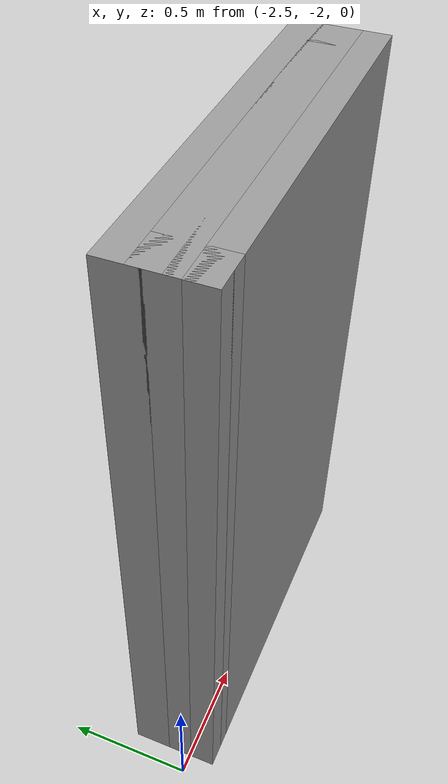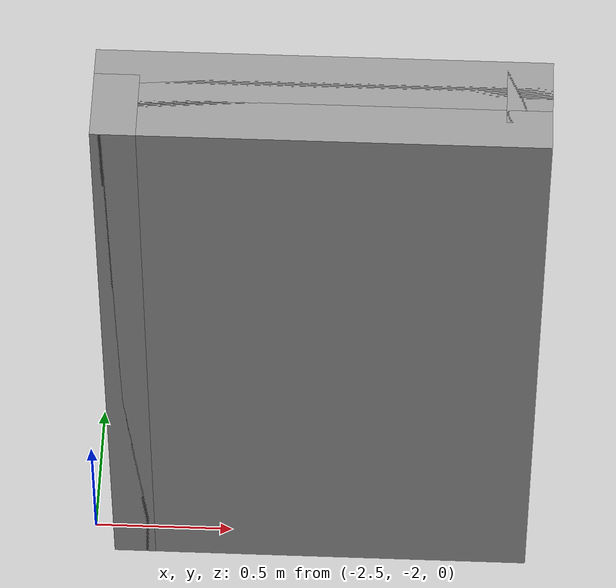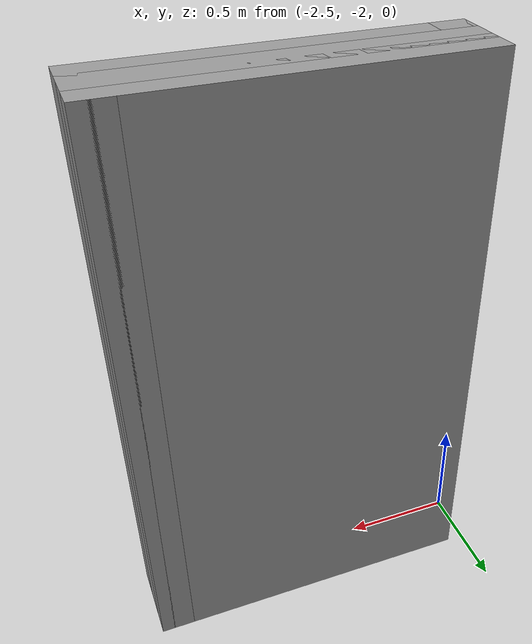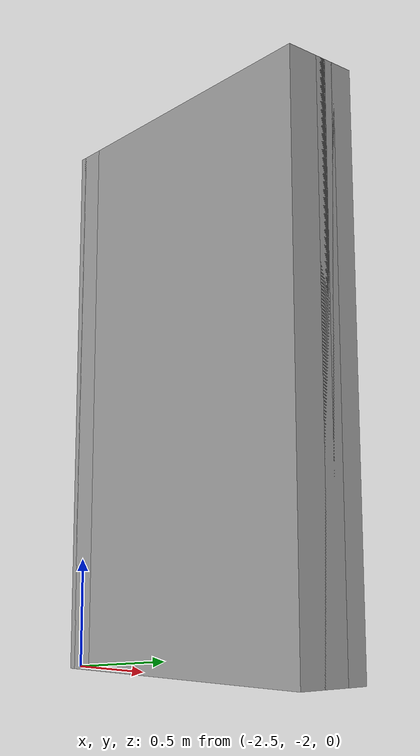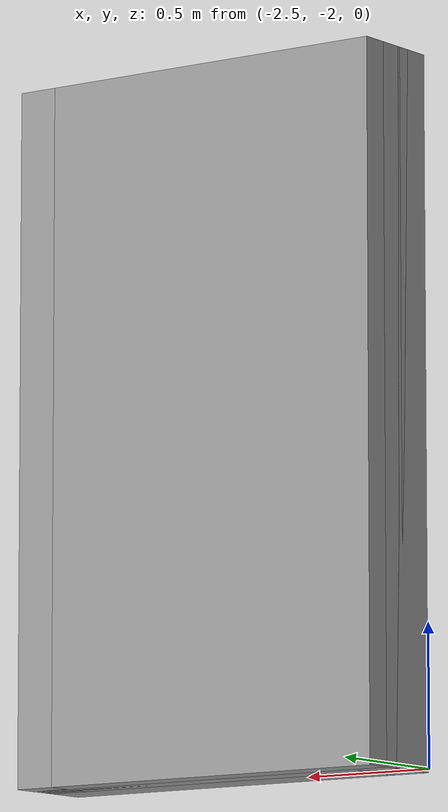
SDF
<?xml version='1.0'?>
<sdf version='1.6'>
  <model name='object_1'>
    <pose frame=''>-1.675 -1.93 0 0 -0 0</pose>
    <link name='Wall_0'>
      <collision name='Wall_0_Collision'>
        <geometry>
          <box>
            <size>1.5 0.15 2.5</size>
          </box>
        </geometry>
        <pose frame=''>0 0 1.25 0 -0 0</pose>
      </collision>
      <visual name='Wall_0_Visual'>
        <pose frame=''>0 0 1.25 0 -0 0</pose>
        <geometry>
          <box>
            <size>1.5 0.15 2.5</size>
          </box>
        </geometry>
        <material>
          <script>
            <uri>file://media/materials/scripts/gazebo.material</uri>
            <name>Gazebo/Grey</name>
          </script>
          <ambient>1 1 1 1</ambient>
        </material>
      </visual>
      <pose frame=''>0 0.1 0 0 -0 0</pose>
    </link>
    <link name='Wall_1'>
      <collision name='Wall_1_Collision'>
        <geometry>
          <box>
            <size>0.25 0.15 2.5</size>
          </box>
        </geometry>
        <pose frame=''>0 0 1.25 0 -0 0</pose>
      </collision>
      <visual name='Wall_1_Visual'>
        <pose frame=''>0 0 1.25 0 -0 0</pose>
        <geometry>
          <box>
            <size>0.25 0.15 2.5</size>
          </box>
        </geometry>
        <material>
          <script>
            <uri>file://media/materials/scripts/gazebo.material</uri>
            <name>Gazebo/Grey</name>
          </script>
          <ambient>1 1 1 1</ambient>
        </material>
      </visual>
      <pose frame=''>0.675 0.05 0 0 0 -1.5708</pose>
    </link>
    <link name='Wall_2'>
      <collision name='Wall_2_Collision'>
        <geometry>
          <box>
            <size>1.5 0.15 2.5</size>
          </box>
        </geometry>
        <pose frame=''>0 0 1.25 0 -0 0</pose>
      </collision>
      <visual name='Wall_2_Visual'>
        <pose frame=''>0 0 1.25 0 -0 0</pose>
        <geometry>
          <box>
            <size>1.5 0.15 2.5</size>
          </box>
        </geometry>
        <material>
          <script>
            <uri>file://media/materials/scripts/gazebo.material</uri>
            <name>Gazebo/Grey</name>
          </script>
          <ambient>1 1 1 1</ambient>
        </material>
      </visual>
      <pose frame=''>0 0 0 0 -0 3.14159</pose>
    </link>
    <link name='Wall_4'>
      <collision name='Wall_4_Collision'>
        <geometry>
          <box>
            <size>0.25 0.15 2.5</size>
          </box>
        </geometry>
        <pose frame=''>0 0 1.25 0 -0 0</pose>
      </collision>
      <visual name='Wall_4_Visual'>
        <pose frame=''>0 0 1.25 0 -0 0</pose>
        <geometry>
          <box>
            <size>0.25 0.15 2.5</size>
          </box>
        </geometry>
        <material>
          <script>
            <uri>file://media/materials/scripts/gazebo.material</uri>
            <name>Gazebo/Grey</name>
          </script>
          <ambient>1 1 1 1</ambient>
        </material>
      </visual>
      <pose frame=''>-0.675 -0.05 0 0 0 -1.5708</pose>
    </link>
    <link name='Wall_5'>
      <collision name='Wall_5_Collision'>
        <geometry>
          <box>
            <size>1.5 0.15 2.5</size>
          </box>
        </geometry>
        <pose frame=''>0 0 1.25 0 -0 0</pose>
      </collision>
      <visual name='Wall_5_Visual'>
        <pose frame=''>0 0 1.25 0 -0 0</pose>
        <geometry>
          <box>
            <size>1.5 0.15 2.5</size>
          </box>
        </geometry>
        <material>
          <script>
            <uri>file://media/materials/scripts/gazebo.material</uri>
            <name>Gazebo/Grey</name>
          </script>
          <ambient>1 1 1 1</ambient>
        </material>
      </visual>
      <pose frame=''>0 -0.1 0 0 -0 0</pose>
    </link>
    <static>1</static>
  </model>
</sdf>
